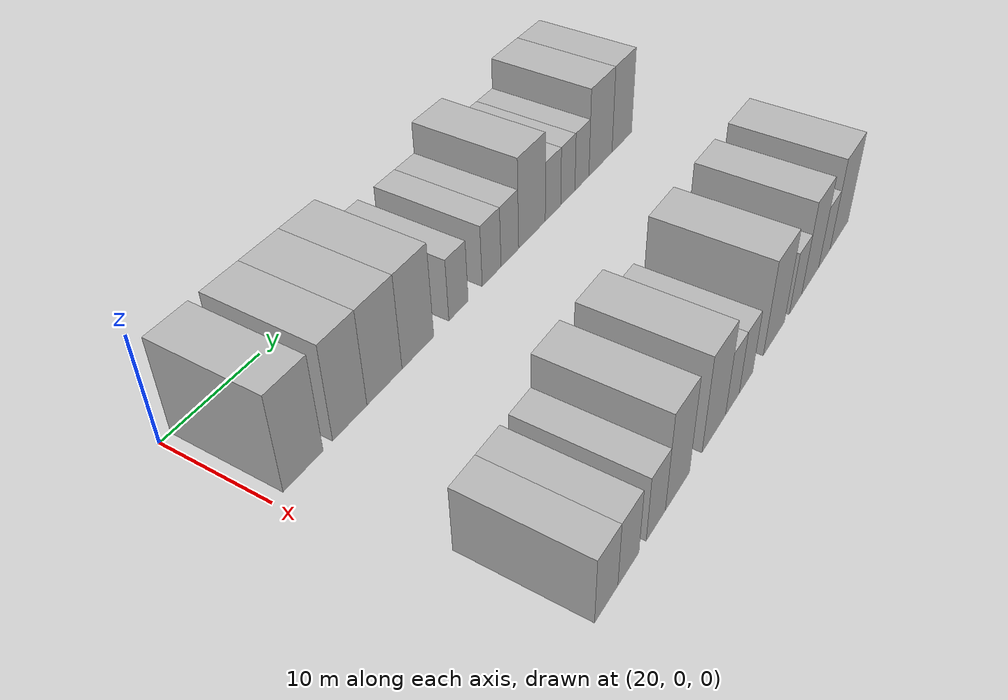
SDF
<sdf version="1.6">
 <world name="default">
  <model name="building_51">
   <static>1</static>
   <pose>25.0000 3.0756 0 0.000000 0.000000 0.000000</pose>
   <link name="link">
    <pose>0 0 4.50 0 0 0</pose>
    <collision name="collision"><geometry><box><size>10.0000 4.0845 9.0000</size></box></geometry></collision>
    <visual name="visual">
     <cast_shadows>0</cast_shadows>
     <geometry><box><size>10.0000 4.0845 9.0000</size></box></geometry>
     <material>
      <script>
       <uri>model://HANNAS_wall/materials/scripts</uri>
       <uri>model://HANNAS_wall/materials/textures</uri>
       <name>vrc/HANNAS_wall</name>
      </script>
     </material>
    </visual>
   </link>
  </model>
  <model name="building_52">
   <static>1</static>
   <pose>25.0000 8.0231 0 0.000000 0.000000 0.000000</pose>
   <link name="link">
    <pose>0 0 4.50 0 0 0</pose>
    <collision name="collision"><geometry><box><size>10.0000 3.8103 9.0000</size></box></geometry></collision>
    <visual name="visual">
     <cast_shadows>0</cast_shadows>
     <geometry><box><size>10.0000 3.8103 9.0000</size></box></geometry>
     <material>
      <script>
       <uri>model://HANNAS_wall/materials/scripts</uri>
       <uri>model://HANNAS_wall/materials/textures</uri>
       <name>vrc/HANNAS_wall</name>
      </script>
     </material>
    </visual>
   </link>
  </model>
  <model name="building_53">
   <static>1</static>
   <pose>25.0000 12.0070 0 0.000000 0.000000 0.000000</pose>
   <link name="link">
    <pose>0 0 4.50 0 0 0</pose>
    <collision name="collision"><geometry><box><size>10.0000 4.1575 9.0000</size></box></geometry></collision>
    <visual name="visual">
     <cast_shadows>0</cast_shadows>
     <geometry><box><size>10.0000 4.1575 9.0000</size></box></geometry>
     <material>
      <script>
       <uri>model://HANNAS_wall/materials/scripts</uri>
       <uri>model://HANNAS_wall/materials/textures</uri>
       <name>vrc/HANNAS_wall</name>
      </script>
     </material>
    </visual>
   </link>
  </model>
  <model name="building_54">
   <static>1</static>
   <pose>25.0000 16.0909 0 0.000000 0.000000 0.000000</pose>
   <link name="link">
    <pose>0 0 4.50 0 0 0</pose>
    <collision name="collision"><geometry><box><size>10.0000 4.0104 9.0000</size></box></geometry></collision>
    <visual name="visual">
     <cast_shadows>0</cast_shadows>
     <geometry><box><size>10.0000 4.0104 9.0000</size></box></geometry>
     <material>
      <script>
       <uri>model://HANNAS_wall/materials/scripts</uri>
       <uri>model://HANNAS_wall/materials/textures</uri>
       <name>vrc/HANNAS_wall</name>
      </script>
     </material>
    </visual>
   </link>
  </model>
  <model name="building_55">
   <static>1</static>
   <pose>25.0000 21.4236 0 0.000000 0.000000 0.000000</pose>
   <link name="link">
    <pose>0 0 3.00 0 0 0</pose>
    <collision name="collision"><geometry><box><size>10.0000 2.6548 6.0000</size></box></geometry></collision>
    <visual name="visual">
     <cast_shadows>0</cast_shadows>
     <geometry><box><size>10.0000 2.6548 6.0000</size></box></geometry>
     <material>
      <script>
       <uri>model://HANNAS_wall/materials/scripts</uri>
       <uri>model://HANNAS_wall/materials/textures</uri>
       <name>vrc/HANNAS_wall</name>
      </script>
     </material>
    </visual>
   </link>
  </model>
  <model name="building_56">
   <static>1</static>
   <pose>25.0000 26.1383 0 0.000000 0.000000 0.000000</pose>
   <link name="link">
    <pose>0 0 3.00 0 0 0</pose>
    <collision name="collision"><geometry><box><size>10.0000 2.7746 6.0000</size></box></geometry></collision>
    <visual name="visual">
     <cast_shadows>0</cast_shadows>
     <geometry><box><size>10.0000 2.7746 6.0000</size></box></geometry>
     <material>
      <script>
       <uri>model://HANNAS_wall/materials/scripts</uri>
       <uri>model://HANNAS_wall/materials/textures</uri>
       <name>vrc/HANNAS_wall</name>
      </script>
     </material>
    </visual>
   </link>
  </model>
  <model name="building_57">
   <static>1</static>
   <pose>25.0000 28.8759 0 0.000000 0.000000 0.000000</pose>
   <link name="link">
    <pose>0 0 3.00 0 0 0</pose>
    <collision name="collision"><geometry><box><size>10.0000 2.7008 6.0000</size></box></geometry></collision>
    <visual name="visual">
     <cast_shadows>0</cast_shadows>
     <geometry><box><size>10.0000 2.7008 6.0000</size></box></geometry>
     <material>
      <script>
       <uri>model://HANNAS_wall/materials/scripts</uri>
       <uri>model://HANNAS_wall/materials/textures</uri>
       <name>vrc/HANNAS_wall</name>
      </script>
     </material>
    </visual>
   </link>
  </model>
  <model name="building_58">
   <static>1</static>
   <pose>25.0000 32.3667 0 0.000000 0.000000 0.000000</pose>
   <link name="link">
    <pose>0 0 4.50 0 0 0</pose>
    <collision name="collision"><geometry><box><size>10.0000 4.2808 9.0000</size></box></geometry></collision>
    <visual name="visual">
     <cast_shadows>0</cast_shadows>
     <geometry><box><size>10.0000 4.2808 9.0000</size></box></geometry>
     <material>
      <script>
       <uri>model://HANNAS_wall/materials/scripts</uri>
       <uri>model://HANNAS_wall/materials/textures</uri>
       <name>vrc/HANNAS_wall</name>
      </script>
     </material>
    </visual>
   </link>
  </model>
  <model name="building_59">
   <static>1</static>
   <pose>25.0000 35.8172 0 0.000000 0.000000 0.000000</pose>
   <link name="link">
    <pose>0 0 3.00 0 0 0</pose>
    <collision name="collision"><geometry><box><size>10.0000 2.6202 6.0000</size></box></geometry></collision>
    <visual name="visual">
     <cast_shadows>0</cast_shadows>
     <geometry><box><size>10.0000 2.6202 6.0000</size></box></geometry>
     <material>
      <script>
       <uri>model://HANNAS_wall/materials/scripts</uri>
       <uri>model://HANNAS_wall/materials/textures</uri>
       <name>vrc/HANNAS_wall</name>
      </script>
     </material>
    </visual>
   </link>
  </model>
  <model name="building_60">
   <static>1</static>
   <pose>25.0000 38.3645 0 0.000000 0.000000 0.000000</pose>
   <link name="link">
    <pose>0 0 3.00 0 0 0</pose>
    <collision name="collision"><geometry><box><size>10.0000 2.4744 6.0000</size></box></geometry></collision>
    <visual name="visual">
     <cast_shadows>0</cast_shadows>
     <geometry><box><size>10.0000 2.4744 6.0000</size></box></geometry>
     <material>
      <script>
       <uri>model://HANNAS_wall/materials/scripts</uri>
       <uri>model://HANNAS_wall/materials/textures</uri>
       <name>vrc/HANNAS_wall</name>
      </script>
     </material>
    </visual>
   </link>
  </model>
  <model name="building_61">
   <static>1</static>
   <pose>25.0000 40.8677 0 0.000000 0.000000 0.000000</pose>
   <link name="link">
    <pose>0 0 3.00 0 0 0</pose>
    <collision name="collision"><geometry><box><size>10.0000 2.5318 6.0000</size></box></geometry></collision>
    <visual name="visual">
     <cast_shadows>0</cast_shadows>
     <geometry><box><size>10.0000 2.5318 6.0000</size></box></geometry>
     <material>
      <script>
       <uri>model://HANNAS_wall/materials/scripts</uri>
       <uri>model://HANNAS_wall/materials/textures</uri>
       <name>vrc/HANNAS_wall</name>
      </script>
     </material>
    </visual>
   </link>
  </model>
  <model name="building_62">
   <static>1</static>
   <pose>25.0000 44.3219 0 0.000000 0.000000 0.000000</pose>
   <link name="link">
    <pose>0 0 4.50 0 0 0</pose>
    <collision name="collision"><geometry><box><size>10.0000 4.3766 9.0000</size></box></geometry></collision>
    <visual name="visual">
     <cast_shadows>0</cast_shadows>
     <geometry><box><size>10.0000 4.3766 9.0000</size></box></geometry>
     <material>
      <script>
       <uri>model://HANNAS_wall/materials/scripts</uri>
       <uri>model://HANNAS_wall/materials/textures</uri>
       <name>vrc/HANNAS_wall</name>
      </script>
     </material>
    </visual>
   </link>
  </model>
  <model name="building_63">
   <static>1</static>
   <pose>25.0000 48.4581 0 0.000000 0.000000 0.000000</pose>
   <link name="link">
    <pose>0 0 4.50 0 0 0</pose>
    <collision name="collision"><geometry><box><size>10.0000 3.8957 9.0000</size></box></geometry></collision>
    <visual name="visual">
     <cast_shadows>0</cast_shadows>
     <geometry><box><size>10.0000 3.8957 9.0000</size></box></geometry>
     <material>
      <script>
       <uri>model://HANNAS_wall/materials/scripts</uri>
       <uri>model://HANNAS_wall/materials/textures</uri>
       <name>vrc/HANNAS_wall</name>
      </script>
     </material>
    </visual>
   </link>
  </model>
  <model name="building_158">
   <static>1</static>
   <pose>47.0000 4.3973 0 0.000000 0.000000 0.000000</pose>
   <link name="link">
    <pose>0 0 3.00 0 0 0</pose>
    <collision name="collision"><geometry><box><size>10.0000 2.9112 6.0000</size></box></geometry></collision>
    <visual name="visual">
     <cast_shadows>0</cast_shadows>
     <geometry><box><size>10.0000 2.9112 6.0000</size></box></geometry>
     <material>
      <script>
       <uri>model://HANNAS_wall/materials/scripts</uri>
       <uri>model://HANNAS_wall/materials/textures</uri>
       <name>vrc/HANNAS_wall</name>
      </script>
     </material>
    </visual>
   </link>
  </model>
  <model name="building_159">
   <static>1</static>
   <pose>47.0000 7.2506 0 0.000000 0.000000 0.000000</pose>
   <link name="link">
    <pose>0 0 3.00 0 0 0</pose>
    <collision name="collision"><geometry><box><size>10.0000 2.7954 6.0000</size></box></geometry></collision>
    <visual name="visual">
     <cast_shadows>0</cast_shadows>
     <geometry><box><size>10.0000 2.7954 6.0000</size></box></geometry>
     <material>
      <script>
       <uri>model://HANNAS_wall/materials/scripts</uri>
       <uri>model://HANNAS_wall/materials/textures</uri>
       <name>vrc/HANNAS_wall</name>
      </script>
     </material>
    </visual>
   </link>
  </model>
  <model name="building_160">
   <static>1</static>
   <pose>47.0000 11.0102 0 0.000000 0.000000 0.000000</pose>
   <link name="link">
    <pose>0 0 3.00 0 0 0</pose>
    <collision name="collision"><geometry><box><size>10.0000 2.7239 6.0000</size></box></geometry></collision>
    <visual name="visual">
     <cast_shadows>0</cast_shadows>
     <geometry><box><size>10.0000 2.7239 6.0000</size></box></geometry>
     <material>
      <script>
       <uri>model://HANNAS_wall/materials/scripts</uri>
       <uri>model://HANNAS_wall/materials/textures</uri>
       <name>vrc/HANNAS_wall</name>
      </script>
     </material>
    </visual>
   </link>
  </model>
  <model name="building_161">
   <static>1</static>
   <pose>47.0000 14.1853 0 0.000000 0.000000 0.000000</pose>
   <link name="link">
    <pose>0 0 4.50 0 0 0</pose>
    <collision name="collision"><geometry><box><size>10.0000 3.6263 9.0000</size></box></geometry></collision>
    <visual name="visual">
     <cast_shadows>0</cast_shadows>
     <geometry><box><size>10.0000 3.6263 9.0000</size></box></geometry>
     <material>
      <script>
       <uri>model://HANNAS_wall/materials/scripts</uri>
       <uri>model://HANNAS_wall/materials/textures</uri>
       <name>vrc/HANNAS_wall</name>
      </script>
     </material>
    </visual>
   </link>
  </model>
  <model name="building_162">
   <static>1</static>
   <pose>47.0000 19.9480 0 0.000000 0.000000 0.000000</pose>
   <link name="link">
    <pose>0 0 4.50 0 0 0</pose>
    <collision name="collision"><geometry><box><size>10.0000 3.8989 9.0000</size></box></geometry></collision>
    <visual name="visual">
     <cast_shadows>0</cast_shadows>
     <geometry><box><size>10.0000 3.8989 9.0000</size></box></geometry>
     <material>
      <script>
       <uri>model://HANNAS_wall/materials/scripts</uri>
       <uri>model://HANNAS_wall/materials/textures</uri>
       <name>vrc/HANNAS_wall</name>
      </script>
     </material>
    </visual>
   </link>
  </model>
  <model name="building_163">
   <static>1</static>
   <pose>47.0000 23.1011 0 0.000000 0.000000 0.000000</pose>
   <link name="link">
    <pose>0 0 3.00 0 0 0</pose>
    <collision name="collision"><geometry><box><size>10.0000 2.4075 6.0000</size></box></geometry></collision>
    <visual name="visual">
     <cast_shadows>0</cast_shadows>
     <geometry><box><size>10.0000 2.4075 6.0000</size></box></geometry>
     <material>
      <script>
       <uri>model://HANNAS_wall/materials/scripts</uri>
       <uri>model://HANNAS_wall/materials/textures</uri>
       <name>vrc/HANNAS_wall</name>
      </script>
     </material>
    </visual>
   </link>
  </model>
  <model name="building_164">
   <static>1</static>
   <pose>47.0000 25.5552 0 0.000000 0.000000 0.000000</pose>
   <link name="link">
    <pose>0 0 3.00 0 0 0</pose>
    <collision name="collision"><geometry><box><size>10.0000 2.5005 6.0000</size></box></geometry></collision>
    <visual name="visual">
     <cast_shadows>0</cast_shadows>
     <geometry><box><size>10.0000 2.5005 6.0000</size></box></geometry>
     <material>
      <script>
       <uri>model://HANNAS_wall/materials/scripts</uri>
       <uri>model://HANNAS_wall/materials/textures</uri>
       <name>vrc/HANNAS_wall</name>
      </script>
     </material>
    </visual>
   </link>
  </model>
  <model name="building_165">
   <static>1</static>
   <pose>47.0000 30.9101 0 0.000000 0.000000 0.000000</pose>
   <link name="link">
    <pose>0 0 4.50 0 0 0</pose>
    <collision name="collision"><geometry><box><size>10.0000 4.2093 9.0000</size></box></geometry></collision>
    <visual name="visual">
     <cast_shadows>0</cast_shadows>
     <geometry><box><size>10.0000 4.2093 9.0000</size></box></geometry>
     <material>
      <script>
       <uri>model://HANNAS_wall/materials/scripts</uri>
       <uri>model://HANNAS_wall/materials/textures</uri>
       <name>vrc/HANNAS_wall</name>
      </script>
     </material>
    </visual>
   </link>
  </model>
  <model name="building_166">
   <static>1</static>
   <pose>47.0000 35.3304 0 0.000000 0.000000 0.000000</pose>
   <link name="link">
    <pose>0 0 3.00 0 0 0</pose>
    <collision name="collision"><geometry><box><size>10.0000 2.6312 6.0000</size></box></geometry></collision>
    <visual name="visual">
     <cast_shadows>0</cast_shadows>
     <geometry><box><size>10.0000 2.6312 6.0000</size></box></geometry>
     <material>
      <script>
       <uri>model://HANNAS_wall/materials/scripts</uri>
       <uri>model://HANNAS_wall/materials/textures</uri>
       <name>vrc/HANNAS_wall</name>
      </script>
     </material>
    </visual>
   </link>
  </model>
  <model name="building_167">
   <static>1</static>
   <pose>47.0000 38.5597 0 0.000000 0.000000 0.000000</pose>
   <link name="link">
    <pose>0 0 4.50 0 0 0</pose>
    <collision name="collision"><geometry><box><size>10.0000 3.8274 9.0000</size></box></geometry></collision>
    <visual name="visual">
     <cast_shadows>0</cast_shadows>
     <geometry><box><size>10.0000 3.8274 9.0000</size></box></geometry>
     <material>
      <script>
       <uri>model://HANNAS_wall/materials/scripts</uri>
       <uri>model://HANNAS_wall/materials/textures</uri>
       <name>vrc/HANNAS_wall</name>
      </script>
     </material>
    </visual>
   </link>
  </model>
  <model name="building_168">
   <static>1</static>
   <pose>47.0000 41.7967 0 0.000000 0.000000 0.000000</pose>
   <link name="link">
    <pose>0 0 3.00 0 0 0</pose>
    <collision name="collision"><geometry><box><size>10.0000 2.6467 6.0000</size></box></geometry></collision>
    <visual name="visual">
     <cast_shadows>0</cast_shadows>
     <geometry><box><size>10.0000 2.6467 6.0000</size></box></geometry>
     <material>
      <script>
       <uri>model://HANNAS_wall/materials/scripts</uri>
       <uri>model://HANNAS_wall/materials/textures</uri>
       <name>vrc/HANNAS_wall</name>
      </script>
     </material>
    </visual>
   </link>
  </model>
  <model name="building_169">
   <static>1</static>
   <pose>47.0000 45.3477 0 0.000000 0.000000 0.000000</pose>
   <link name="link">
    <pose>0 0 4.50 0 0 0</pose>
    <collision name="collision"><geometry><box><size>10.0000 4.4552 9.0000</size></box></geometry></collision>
    <visual name="visual">
     <cast_shadows>0</cast_shadows>
     <geometry><box><size>10.0000 4.4552 9.0000</size></box></geometry>
     <material>
      <script>
       <uri>model://HANNAS_wall/materials/scripts</uri>
       <uri>model://HANNAS_wall/materials/textures</uri>
       <name>vrc/HANNAS_wall</name>
      </script>
     </material>
    </visual>
   </link>
  </model>
 </world>
</sdf>
